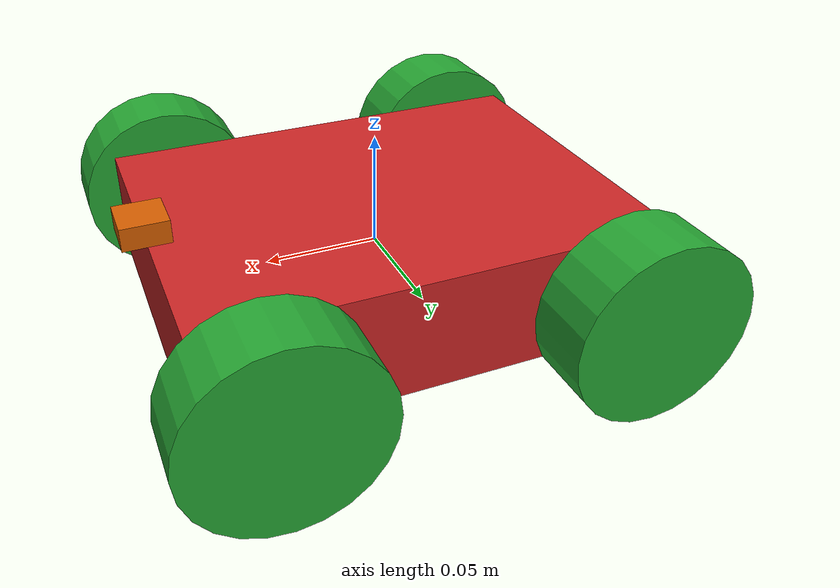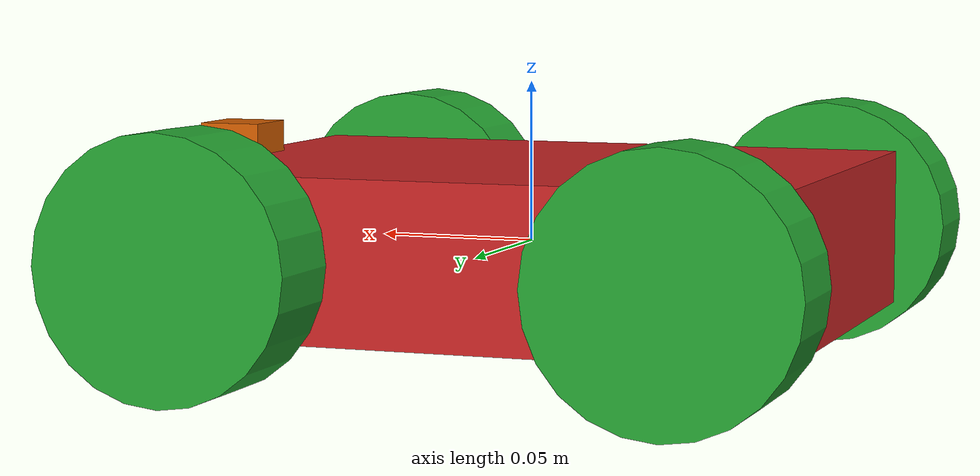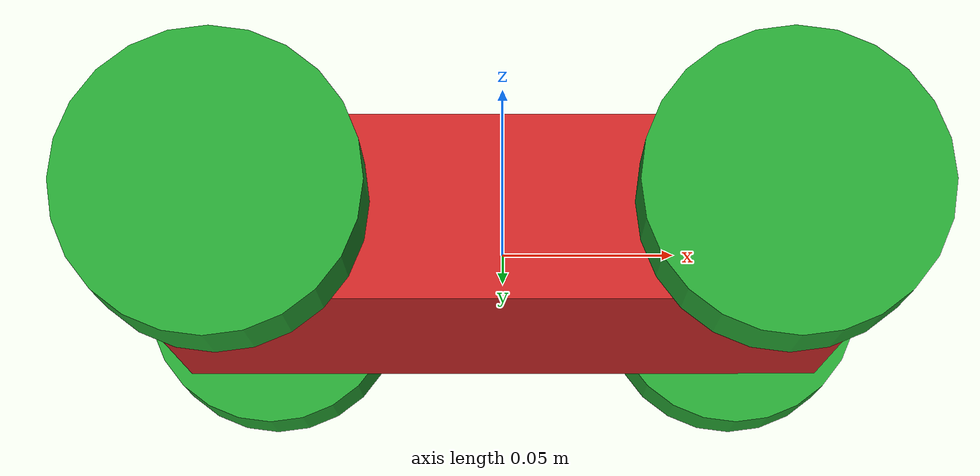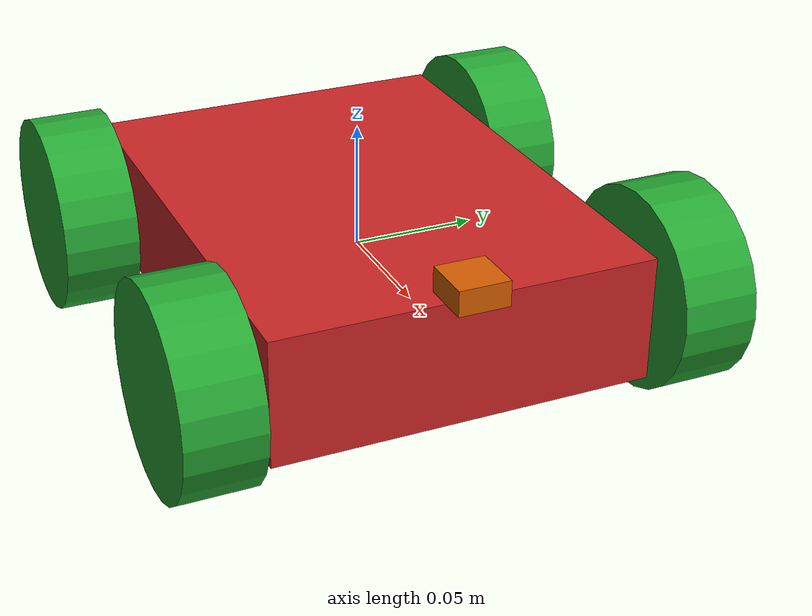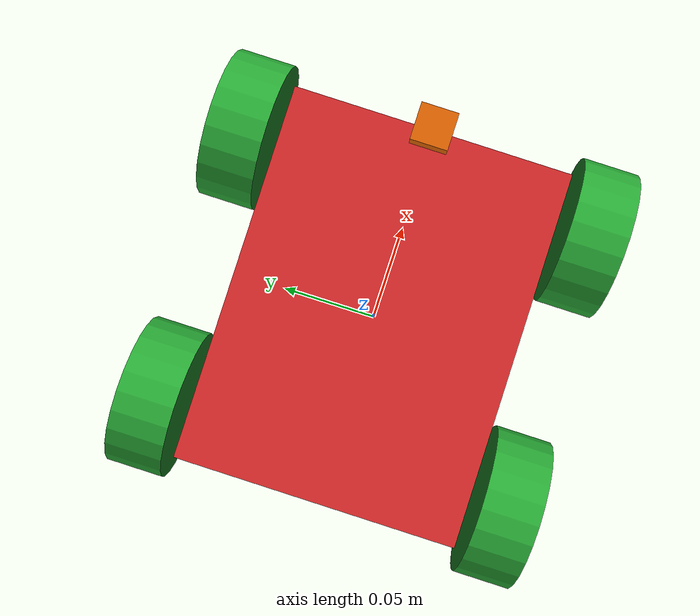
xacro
<?xml version="1.0"?>

<robot name="arm_1dof" xmlns:xacro="http://www.ros.org/wiki/xacro">

    <xacro:include filename="macros.xacro" />
    <xacro:include filename="materials.xacro" />

    <material name="Black">
    <color rgba="0.0 0.0 0.0 1.0" />
    </material>
    <material name="Red">
      <color rgba="0.8 0.0 0.0 1.0" />
    </material>
    <material name="White">
      <color rgba="1.0 1.0 1.0 1.0" />
    </material>
    <material name="Green">
      <color rgba="0.0 1.0 0.0 1.0" />
    </material>

    <link name='chassis'>
      <collision name='chassis_collision'>
        <geometry>
          <box size="0.2 0.15 0.05"/>
        </geometry>
      </collision>
      <visual name='chassis_visual'>
        <origin xyz="0 0 0" rpy=" 0 0 0"/>
        <geometry>
          <box size="0.2 0.15 0.05"/>
        </geometry>
      </visual>
      <inertial name="chassis_inertial">
        <mass value="0.5"/>
        <inertia ixx="0.00104166667" ixy="0" ixz="0"
            iyy="0.00260416667" iyz="0"
            izz="0.00177083333"/>
    </inertial>
    </link>

    <gazebo reference="chassis">
        <material>Gazebo/Red</material>
    </gazebo>

    <link name='wheel_FR'>
      <inertial>
          <mass value="0.025"/>
          <inertia ixx="0.00016666667" ixy="0" ixz="0"
                  iyy="0.00016666667" iyz="0"
                  izz="0.00016666667"/>
      </inertial>
      <collision name='wheel_FR_collision'>
          <origin xyz="0 -0.015 0" rpy="1.5708 0 0"/>
          <geometry>
              <cylinder radius="0.04" length="0.03"/>
          </geometry>
      </collision>
      <visual name='wheel_FR_visual'>
          <origin xyz="0 -0.015 0" rpy="1.5708 0 0"/>
          <geometry>
              <cylinder radius="0.04" length="0.03"/>
          </geometry>
      </visual>
    </link>

    <link name='wheel_FL'>
      <inertial>
          <mass value="0.025"/>
          <inertia ixx="0.00016666667" ixy="0" ixz="0"
                  iyy="0.00016666667" iyz="0"
                  izz="0.00016666667"/>
      </inertial>
      <collision name='wheel_FL_collision'>
          <origin xyz="0 0.015 0" rpy="1.5708 0 0"/>
          <geometry>
              <cylinder radius="0.04" length="0.03"/>
          </geometry>
      </collision>
      <visual name='wheel_FL_visual'>
          <origin xyz="0 0.015 0" rpy="1.5708 0 0"/>
          <geometry>
              <cylinder radius="0.04" length="0.03"/>
          </geometry>
      </visual>
    </link>

    <link name='wheel_RR'>
      <inertial>
          <mass value="0.025"/>
          <inertia ixx="0.00016666667" ixy="0" ixz="0"
                  iyy="0.00016666667" iyz="0"
                  izz="0.00016666667"/>
      </inertial>
      <collision name='wheel_RR_collision'>
          <origin xyz="0 -0.015 0" rpy="1.5708 0 0"/>
          <geometry>
              <cylinder radius="0.04" length="0.03"/>
          </geometry>
      </collision>
      <visual name='wheel_RR_visual'>
          <origin xyz="0 -0.015 0" rpy="1.5708 0 0"/>
          <geometry>
              <cylinder radius="0.04" length="0.03"/>
          </geometry>
      </visual>
    </link>

    <link name='wheel_RL'>
        <inertial>
            <mass value="0.025"/>
            <inertia ixx="0.00016666667" ixy="0" ixz="0"
                    iyy="0.00016666667" iyz="0"
                    izz="0.00016666667"/>
        </inertial>
        <collision name='wheel_RL_collision'>
            <origin xyz="0 0.015 0" rpy="1.5708 0 0"/>
            <geometry>
                <cylinder radius="0.04" length="0.03"/>
            </geometry>
        </collision>
        <visual name='wheel_RL_visual'>
            <origin xyz="0 0.015 0" rpy="1.5708 0 0"/>
            <geometry>
                <cylinder radius="0.04" length="0.03"/>
            </geometry>
        </visual>
    </link>

    <link name='camera_link'>
      <inertial>
          <mass value="0.01"/>
          <inertia ixx="8.333333e-06" ixy="0" ixz="0"
                  iyy="8.333333e-06" iyz="0"
                  izz="8.333333e-06"/>
      </inertial>
      <collision name='camera_link_collision'>
          <geometry>
              <box size="0.02 0.02 0.01"/>
          </geometry>
      </collision>
      <visual name='camera_link_visual'>
          <origin xyz="0 0 0" rpy="0 0 0"/>
          <geometry>
              <box size="0.02 0.02 0.01"/>
          </geometry>
      </visual>
    </link>

    <joint name="wheel_FR_joint" type="continuous">
        <parent link="chassis"/>
        <child link="wheel_FR"/>
        <origin xyz="0.075 -0.08 0"
                rpy="0 0 0"/>
        <axis xyz="0 1 0"/>
    </joint>

    <joint name="wheel_FL_joint" type="continuous">
        <parent link="chassis"/>
        <child link="wheel_FL"/>
        <origin xyz="0.075 0.08 0"
                rpy="0 0 0"/>
        <axis xyz="0 1 0"/>
    </joint>

    <joint name="wheel_RR_joint" type="continuous">
        <parent link="chassis"/>
        <child link="wheel_RR"/>
        <origin xyz="-0.075 -0.08 0"
                rpy="0 0 0"/>
        <axis xyz="0 1 0"/>
    </joint>

    <joint name="wheel_RL_joint" type="continuous">
      <parent link="chassis"/>
      <child link="wheel_RL"/>
      <origin xyz="-0.075 0.08 0"
              rpy="0 0 0"/>
      <axis xyz="0 1 0"/>
    </joint>

    <joint name="camera_joint" type="fixed">
        <parent link="chassis"/>
        <child link="camera_link"/>
        <origin xyz="0.1 0 0.03"/>
    </joint>

    <gazebo reference="wheel_FL">
        <material>Gazebo/Green</material>
    </gazebo>

    <gazebo reference="wheel_FR">
        <material>Gazebo/Green</material>
    </gazebo>

    <gazebo reference="wheel_RL">
        <material>Gazebo/Green</material>
    </gazebo>

    <gazebo reference="wheel_RR">
        <material>Gazebo/Green</material>
    </gazebo>

    <gazebo reference="camera_link">
        <sensor type="camera" name="camera1">
            <update_rate>30.0</update_rate>
            <camera name="head">
                <horizontal_fov>1.3962634</horizontal_fov>
                <image>
                <width>800</width>
                <height>800</height>
                <format>R8G8B8</format>
                </image>
                <clip>
                <near>0.02</near>
                <far>300</far>
                </clip>
                <noise>
                <type>gaussian</type>
                <mean>0.0</mean>
                <stddev>0.007</stddev>
                </noise>
            </camera>
            <plugin name="camera_controller" filename="libgazebo_ros_camera.so">
                <alwaysOn>true</alwaysOn>
                <updateRate>0.0</updateRate>
                <cameraName>robot/camera</cameraName>
                <imageTopicName>image_raw</imageTopicName>
                <cameraInfoTopicName>camera_info</cameraInfoTopicName>
                <frameName>camera_link</frameName>
                <hackBaseline>0.07</hackBaseline>
                <distortionK1>0.0</distortionK1>
                <distortionK2>0.0</distortionK2>
                <distortionK3>0.0</distortionK3>
                <distortionT1>0.0</distortionT1>
                <distortionT2>0.0</distortionT2>
            </plugin>
            </sensor>
        </gazebo>

        <gazebo>
            <plugin name="skid_steer_drive" filename="libgazebo_ros_diff_drive.so">

                <ros>
                    <namespace></namespace>
                </ros>

            <update_rate>100.0</update_rate>

            <num_wheel_pairs>2</num_wheel_pairs>

            <left_joint>wheel_FL_joint</left_joint>
            <right_joint>wheel_FR_joint</right_joint>

            <left_joint>wheel_RL_joint</left_joint>
            <right_joint>wheel_RR_joint</right_joint>

            <wheel_separation>0.15</wheel_separation>
            <wheel_separation>0.15</wheel_separation>

            <wheel_diameter>0.08</wheel_diameter>
            <wheel_diameter>0.08</wheel_diameter>

            <robot_base_frame>chassis</robot_base_frame>
            <max_wheel_torque>200</max_wheel_torque>
            <max_wheel_acceleration>10.0</max_wheel_acceleration>

            <publish_odom>true</publish_odom>
            <publish_odom_tf>true</publish_odom_tf>
            <publish_wheel_tf>true</publish_wheel_tf>

            <odometry_frame>cmd_vel</odometry_frame>
            </plugin>
        </gazebo>

    <xacro:config_ctr_gazebo />
</robot>

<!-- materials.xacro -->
<robot xmlns:xacro="http://www.ros.org/wiki/xacro">
	<material name="black">
	  <color rgba="0.0 0.0 0.0 1.0"/>
	</material>

	<material name="blue">
	  <color rgba="0.0 0.0 0.8 1.0"/>
	</material>

	<material name="green">
	  <color rgba="0.0 0.8 0.0 1.0"/>
	</material>

	<material name="grey">
	  <color rgba="0.2 0.2 0.2 1.0"/>
	</material>

	<material name="orange">
	  <color rgba="${255/255} ${108/255} ${10/255} 1.0"/>
	</material>

	<material name="brown">
	  <color rgba="${222/255} ${207/255} ${195/255} 1.0"/>
	</material>

	<material name="red">
	  <color rgba="0.8 0.0 0.0 1.0"/>
	</material>

	<material name="white">
	  <color rgba="1.0 1.0 1.0 1.0"/>
	</material>

	<material name="yellow">
	  <color rgba="1.0 1.0 0 1.0"/>
	</material>
</robot>
